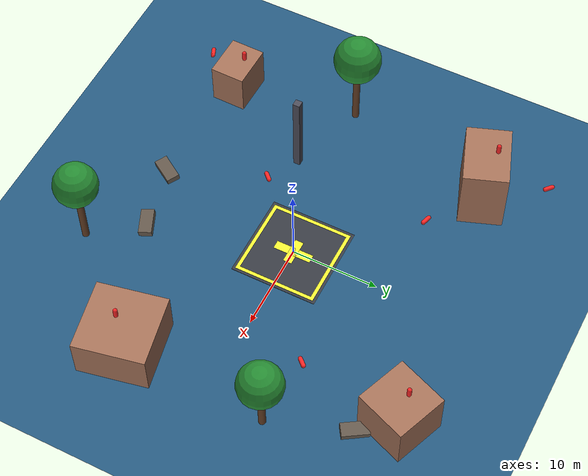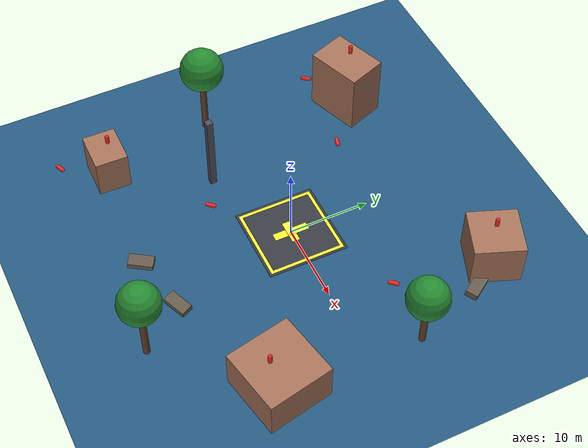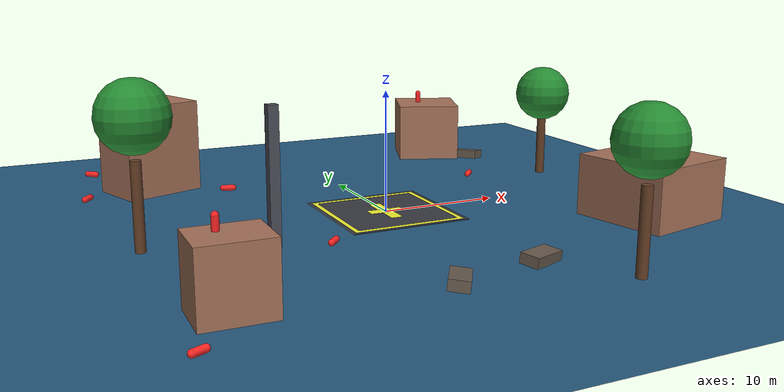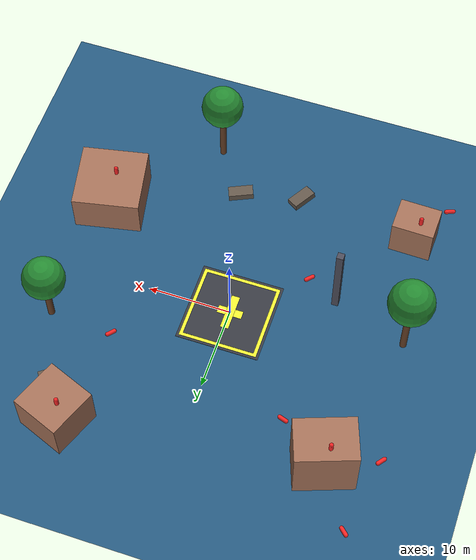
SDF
<?xml version="1.0" encoding="UTF-8"?>
<sdf version="1.9">
  <world name="rescueswarm_flood_zone">
    <physics type="ode">
      <max_step_size>0.004</max_step_size>
      <real_time_factor>1.0</real_time_factor>
      <real_time_update_rate>250</real_time_update_rate>
    </physics>
    <gravity>0 0 -9.8</gravity>
    <magnetic_field>6e-06 2.3e-05 -4.2e-05</magnetic_field>
    <atmosphere type="adiabatic"/>

    <scene>
      <grid>true</grid>
      <ambient>0.6 0.6 0.6 1</ambient>
      <background>0.55 0.65 0.82 1</background>
      <shadows>false</shadows>
    </scene>

    <spherical_coordinates>
      <surface_model>EARTH_WGS84</surface_model>
      <world_frame_orientation>ENU</world_frame_orientation>
      <latitude_deg>28.6139</latitude_deg>
      <longitude_deg>77.2090</longitude_deg>
      <elevation>0</elevation>
    </spherical_coordinates>

    <model name="ground_plane">
      <static>true</static>
      <link name="link">
        <collision name="collision">
          <geometry><plane><normal>0 0 1</normal><size>50 50</size></plane></geometry>
          <surface><friction><ode/></friction></surface>
        </collision>
        <visual name="visual">
          <geometry><plane><normal>0 0 1</normal><size>50 50</size></plane></geometry>
          <material>
            <ambient>0.12 0.28 0.38 1</ambient>
            <diffuse>0.15 0.35 0.50 1</diffuse>
            <specular>0.1 0.1 0.1 1</specular>
          </material>
        </visual>
      </link>
    </model>

    <light name="sunUTC" type="directional">
      <pose>0 0 100 0 0 0</pose>
      <cast_shadows>true</cast_shadows>
      <intensity>1</intensity>
      <direction>0.001 0.625 -0.78</direction>
      <diffuse>0.904 0.904 0.904 1</diffuse>
      <specular>0.271 0.271 0.271 1</specular>
      <attenuation><range>2000</range><linear>0</linear><constant>1</constant><quadratic>0</quadratic></attenuation>
    </light>

    <model name="launchpad">
      <static>true</static>
      <pose>0.0 0.0 0.025 0 0 0</pose>
      <link name="link">
        <collision name="col">
          <geometry><box><size>10.0 10.0 0.05</size></box></geometry>
          <surface><friction><ode><mu>1.0</mu><mu2>1.0</mu2></ode></friction></surface>
        </collision>
        <visual name="deck">
          <geometry><box><size>10.0 10.0 0.05</size></box></geometry>
          <material><ambient>0.16 0.17 0.19 1</ambient><diffuse>0.22 0.23 0.26 1</diffuse></material>
        </visual>
        <visual name="border">
          <pose>0 0 0.027500000000000004 0 0 0</pose>
          <geometry><box><size>9.4 9.4 0.010000000000000002</size></box></geometry>
          <material><ambient>0.85 0.85 0.15 1</ambient><diffuse>0.95 0.95 0.2 1</diffuse></material>
        </visual>
        <visual name="deck_inner">
          <pose>0 0 0.031 0 0 0</pose>
          <geometry><box><size>8.6 8.6 0.010000000000000002</size></box></geometry>
          <material><ambient>0.16 0.17 0.19 1</ambient><diffuse>0.22 0.23 0.26 1</diffuse></material>
        </visual>
        <visual name="mark_v">
          <pose>0 0 0.034999999999999996 0 0 0</pose>
          <geometry><box><size>1.0 4.4 0.010000000000000002</size></box></geometry>
          <material><ambient>0.85 0.85 0.15 1</ambient><diffuse>0.95 0.95 0.2 1</diffuse></material>
        </visual>
        <visual name="mark_h">
          <pose>0 0 0.034999999999999996 0 0 0</pose>
          <geometry><box><size>3.0 1.0 0.010000000000000002</size></box></geometry>
          <material><ambient>0.85 0.85 0.15 1</ambient><diffuse>0.95 0.95 0.2 1</diffuse></material>
        </visual>
      </link>
    </model>

    <model name="house_1">
      <static>true</static>
      <pose>13.8 19.1 2.75 0 0 -0.37</pose>
      <link name="link">
        <collision name="col"><geometry><box><size>6.0 6.0 5.5</size></box></geometry></collision>
        <visual name="walls"><geometry><box><size>6.0 6.0 5.5</size></box></geometry>
          <material><ambient>0.55 0.38 0.28 1</ambient><diffuse>0.65 0.45 0.35 1</diffuse></material>
        </visual>
      </link>
    </model>

    <model name="house_2">
      <static>true</static>
      <pose>-16.0 15.4 4.0 0 0 0.35</pose>
      <link name="link">
        <collision name="col"><geometry><box><size>7.0 5.0 8.0</size></box></geometry></collision>
        <visual name="walls"><geometry><box><size>7.0 5.0 8.0</size></box></geometry>
          <material><ambient>0.55 0.38 0.28 1</ambient><diffuse>0.65 0.45 0.35 1</diffuse></material>
        </visual>
      </link>
    </model>

    <model name="house_3">
      <static>true</static>
      <pose>18.6 -10.3 2.5 0 0 0.2</pose>
      <link name="link">
        <collision name="col"><geometry><box><size>8.0 8.0 5.0</size></box></geometry></collision>
        <visual name="walls"><geometry><box><size>8.0 8.0 5.0</size></box></geometry>
          <material><ambient>0.55 0.38 0.28 1</ambient><diffuse>0.65 0.45 0.35 1</diffuse></material>
        </visual>
      </link>
    </model>

    <model name="house_4">
      <static>true</static>
      <pose>-17.7 -16.3 2.5 0 0 -0.02</pose>
      <link name="link">
        <collision name="col"><geometry><box><size>5.0 4.0 5.0</size></box></geometry></collision>
        <visual name="walls"><geometry><box><size>5.0 4.0 5.0</size></box></geometry>
          <material><ambient>0.55 0.38 0.28 1</ambient><diffuse>0.65 0.45 0.35 1</diffuse></material>
        </visual>
      </link>
    </model>

    <model name="tree_1">
      <static>true</static>
      <pose>8.2 -21.5 0 0 0 0</pose>
      <link name="link">
        <!-- Trunk -->
        <pose>0 0 0 0 0 0</pose>
        <collision name="trunk_col">
          <pose>0 0 3.12 0 0 0</pose>
          <geometry><cylinder><radius>0.4</radius><length>6.24</length></cylinder></geometry>
        </collision>
        <visual name="trunk_vis">
          <pose>0 0 3.12 0 0 0</pose>
          <geometry><cylinder><radius>0.4</radius><length>6.24</length></cylinder></geometry>
          <material><ambient>0.3 0.2 0.1 1</ambient><diffuse>0.4 0.25 0.15 1</diffuse></material>
        </visual>
        <!-- Foliage Canopy -->
        <collision name="canopy_col">
          <pose>0 0 9.15 0 0 0</pose>
          <geometry><sphere><radius>2.5</radius></sphere></geometry>
        </collision>
        <visual name="canopy_vis">
          <pose>0 0 9.15 0 0 0</pose>
          <geometry><sphere><radius>2.5</radius></sphere></geometry>
          <material><ambient>0.1 0.4 0.15 1</ambient><diffuse>0.15 0.55 0.2 1</diffuse></material>
        </visual>
      </link>
    </model>

    <model name="tree_2">
      <static>true</static>
      <pose>-20.3 -2.3 0 0 0 0</pose>
      <link name="link">
        <!-- Trunk -->
        <pose>0 0 0 0 0 0</pose>
        <collision name="trunk_col">
          <pose>0 0 3.3299999999999996 0 0 0</pose>
          <geometry><cylinder><radius>0.4</radius><length>6.659999999999999</length></cylinder></geometry>
        </collision>
        <visual name="trunk_vis">
          <pose>0 0 3.3299999999999996 0 0 0</pose>
          <geometry><cylinder><radius>0.4</radius><length>6.659999999999999</length></cylinder></geometry>
          <material><ambient>0.3 0.2 0.1 1</ambient><diffuse>0.4 0.25 0.15 1</diffuse></material>
        </visual>
        <!-- Foliage Canopy -->
        <collision name="canopy_col">
          <pose>0 0 9.75 0 0 0</pose>
          <geometry><sphere><radius>2.7</radius></sphere></geometry>
        </collision>
        <visual name="canopy_vis">
          <pose>0 0 9.75 0 0 0</pose>
          <geometry><sphere><radius>2.7</radius></sphere></geometry>
          <material><ambient>0.1 0.4 0.15 1</ambient><diffuse>0.15 0.55 0.2 1</diffuse></material>
        </visual>
      </link>
    </model>

    <model name="tree_3">
      <static>true</static>
      <pose>19.8 6.6 0 0 0 0</pose>
      <link name="link">
        <!-- Trunk -->
        <pose>0 0 0 0 0 0</pose>
        <collision name="trunk_col">
          <pose>0 0 2.6999999999999997 0 0 0</pose>
          <geometry><cylinder><radius>0.4</radius><length>5.3999999999999995</length></cylinder></geometry>
        </collision>
        <visual name="trunk_vis">
          <pose>0 0 2.6999999999999997 0 0 0</pose>
          <geometry><cylinder><radius>0.4</radius><length>5.3999999999999995</length></cylinder></geometry>
          <material><ambient>0.3 0.2 0.1 1</ambient><diffuse>0.4 0.25 0.15 1</diffuse></material>
        </visual>
        <!-- Foliage Canopy -->
        <collision name="canopy_col">
          <pose>0 0 7.75 0 0 0</pose>
          <geometry><sphere><radius>2.5</radius></sphere></geometry>
        </collision>
        <visual name="canopy_vis">
          <pose>0 0 7.75 0 0 0</pose>
          <geometry><sphere><radius>2.5</radius></sphere></geometry>
          <material><ambient>0.1 0.4 0.15 1</ambient><diffuse>0.15 0.55 0.2 1</diffuse></material>
        </visual>
      </link>
    </model>

    <model name="tower_1">
      <static>true</static>
      <pose>-11.3 -5.2 5.2 0 0 0</pose>
      <link name="link">
        <collision name="col"><geometry><box><size>0.8 0.8 10.4</size></box></geometry></collision>
        <visual name="vis"><geometry><box><size>0.8 0.8 10.4</size></box></geometry>
          <material><ambient>0.2 0.2 0.25 1</ambient><diffuse>0.3 0.3 0.35 1</diffuse></material>
        </visual>
      </link>
    </model>

    <model name="debris_1">
      <static>true</static>
      <pose>4.1 -16.1 0.4 0.1 0.05 0.4</pose>
      <link name="link">
        <visual name="vis"><geometry><box><size>3.0 1.5 0.8</size></box></geometry>
          <material><ambient>0.35 0.3 0.25 1</ambient><diffuse>0.4 0.35 0.3 1</diffuse></material>
        </visual>
        <collision name="col"><geometry><box><size>3.0 1.5 0.8</size></box></geometry></collision>
      </link>
    </model>

    <model name="debris_2">
      <static>true</static>
      <pose>-3.2 -17.7 0.4 0.1 0.05 1.01</pose>
      <link name="link">
        <visual name="vis"><geometry><box><size>3.0 1.5 0.8</size></box></geometry>
          <material><ambient>0.35 0.3 0.25 1</ambient><diffuse>0.4 0.35 0.3 1</diffuse></material>
        </visual>
        <collision name="col"><geometry><box><size>3.0 1.5 0.8</size></box></geometry></collision>
      </link>
    </model>

    <model name="debris_3">
      <static>true</static>
      <pose>16.6 15.5 0.4 0.1 0.05 2.16</pose>
      <link name="link">
        <visual name="vis"><geometry><box><size>3.0 1.5 0.8</size></box></geometry>
          <material><ambient>0.35 0.3 0.25 1</ambient><diffuse>0.4 0.35 0.3 1</diffuse></material>
        </visual>
        <collision name="col"><geometry><box><size>3.0 1.5 0.8</size></box></geometry></collision>
      </link>
    </model>

    <model name="survivor_1">
      <static>true</static>
      <pose>13.1 19.6 6.0 0.0 0.0 0.0</pose>
      <link name="link">
        <visual name="body"><geometry><capsule><radius>0.25</radius><length>0.9</length></capsule></geometry>
          <material><ambient>0.9 0.1 0.1 1</ambient><diffuse>1.0 0.15 0.15 1</diffuse></material>
        </visual>
        <collision name="col"><geometry><capsule><radius>0.25</radius><length>0.9</length></capsule></geometry></collision>
      </link>
    </model>

    <model name="survivor_2">
      <static>true</static>
      <pose>-16.8 16.3 8.5 0.0 0.0 0.0</pose>
      <link name="link">
        <visual name="body"><geometry><capsule><radius>0.25</radius><length>0.9</length></capsule></geometry>
          <material><ambient>0.9 0.1 0.1 1</ambient><diffuse>1.0 0.15 0.15 1</diffuse></material>
        </visual>
        <collision name="col"><geometry><capsule><radius>0.25</radius><length>0.9</length></capsule></geometry></collision>
      </link>
    </model>

    <model name="survivor_3">
      <static>true</static>
      <pose>18.1 -11.1 5.5 0.0 0.0 0.0</pose>
      <link name="link">
        <visual name="body"><geometry><capsule><radius>0.25</radius><length>0.9</length></capsule></geometry>
          <material><ambient>0.9 0.1 0.1 1</ambient><diffuse>1.0 0.15 0.15 1</diffuse></material>
        </visual>
        <collision name="col"><geometry><capsule><radius>0.25</radius><length>0.9</length></capsule></geometry></collision>
      </link>
    </model>

    <model name="survivor_4">
      <static>true</static>
      <pose>-18.3 -15.7 5.5 0.0 0.0 0.0</pose>
      <link name="link">
        <visual name="body"><geometry><capsule><radius>0.25</radius><length>0.9</length></capsule></geometry>
          <material><ambient>0.9 0.1 0.1 1</ambient><diffuse>1.0 0.15 0.15 1</diffuse></material>
        </visual>
        <collision name="col"><geometry><capsule><radius>0.25</radius><length>0.9</length></capsule></geometry></collision>
      </link>
    </model>

    <model name="survivor_5">
      <static>true</static>
      <pose>-20.3 21.8 0.5 1.57 0.0 0.83</pose>
      <link name="link">
        <visual name="body"><geometry><capsule><radius>0.25</radius><length>0.9</length></capsule></geometry>
          <material><ambient>0.9 0.1 0.1 1</ambient><diffuse>1.0 0.15 0.15 1</diffuse></material>
        </visual>
        <collision name="col"><geometry><capsule><radius>0.25</radius><length>0.9</length></capsule></geometry></collision>
      </link>
    </model>

    <model name="survivor_6">
      <static>true</static>
      <pose>12.1 7.2 0.5 1.57 0.0 2.41</pose>
      <link name="link">
        <visual name="body"><geometry><capsule><radius>0.25</radius><length>0.9</length></capsule></geometry>
          <material><ambient>0.9 0.1 0.1 1</ambient><diffuse>1.0 0.15 0.15 1</diffuse></material>
        </visual>
        <collision name="col"><geometry><capsule><radius>0.25</radius><length>0.9</length></capsule></geometry></collision>
      </link>
    </model>

    <model name="survivor_7">
      <static>true</static>
      <pose>-20.9 -21.5 0.5 1.57 0.0 1.96</pose>
      <link name="link">
        <visual name="body"><geometry><capsule><radius>0.25</radius><length>0.9</length></capsule></geometry>
          <material><ambient>0.9 0.1 0.1 1</ambient><diffuse>1.0 0.15 0.15 1</diffuse></material>
        </visual>
        <collision name="col"><geometry><capsule><radius>0.25</radius><length>0.9</length></capsule></geometry></collision>
      </link>
    </model>

    <model name="survivor_8">
      <static>true</static>
      <pose>-21.9 12.7 0.5 1.57 0.0 2.48</pose>
      <link name="link">
        <visual name="body"><geometry><capsule><radius>0.25</radius><length>0.9</length></capsule></geometry>
          <material><ambient>0.9 0.1 0.1 1</ambient><diffuse>1.0 0.15 0.15 1</diffuse></material>
        </visual>
        <collision name="col"><geometry><capsule><radius>0.25</radius><length>0.9</length></capsule></geometry></collision>
      </link>
    </model>

    <model name="survivor_9">
      <static>true</static>
      <pose>-10.1 11.3 0.5 1.57 0.0 1.26</pose>
      <link name="link">
        <visual name="body"><geometry><capsule><radius>0.25</radius><length>0.9</length></capsule></geometry>
          <material><ambient>0.9 0.1 0.1 1</ambient><diffuse>1.0 0.15 0.15 1</diffuse></material>
        </visual>
        <collision name="col"><geometry><capsule><radius>0.25</radius><length>0.9</length></capsule></geometry></collision>
      </link>
    </model>

    <model name="survivor_10">
      <static>true</static>
      <pose>-7.5 -7.1 0.5 1.57 0.0 2.38</pose>
      <link name="link">
        <visual name="body"><geometry><capsule><radius>0.25</radius><length>0.9</length></capsule></geometry>
          <material><ambient>0.9 0.1 0.1 1</ambient><diffuse>1.0 0.15 0.15 1</diffuse></material>
        </visual>
        <collision name="col"><geometry><capsule><radius>0.25</radius><length>0.9</length></capsule></geometry></collision>
      </link>
    </model>

  </world>
</sdf>
